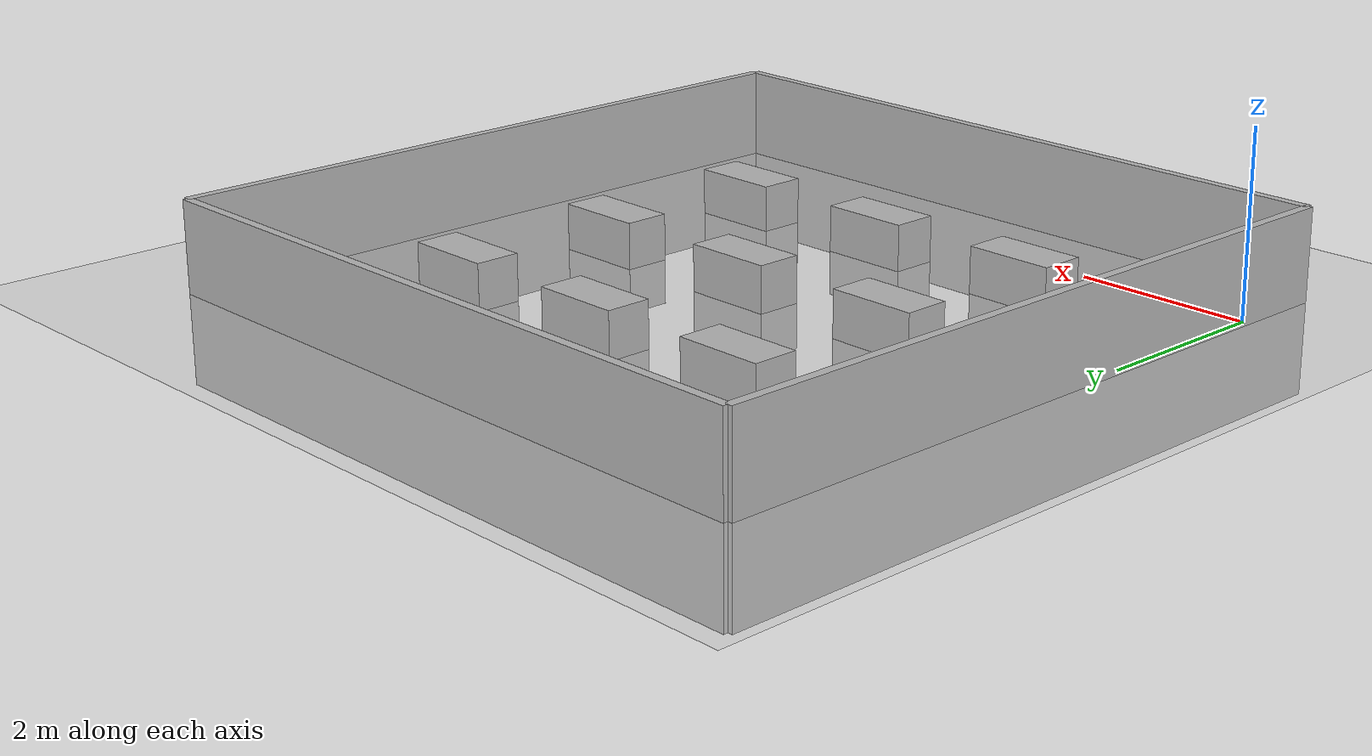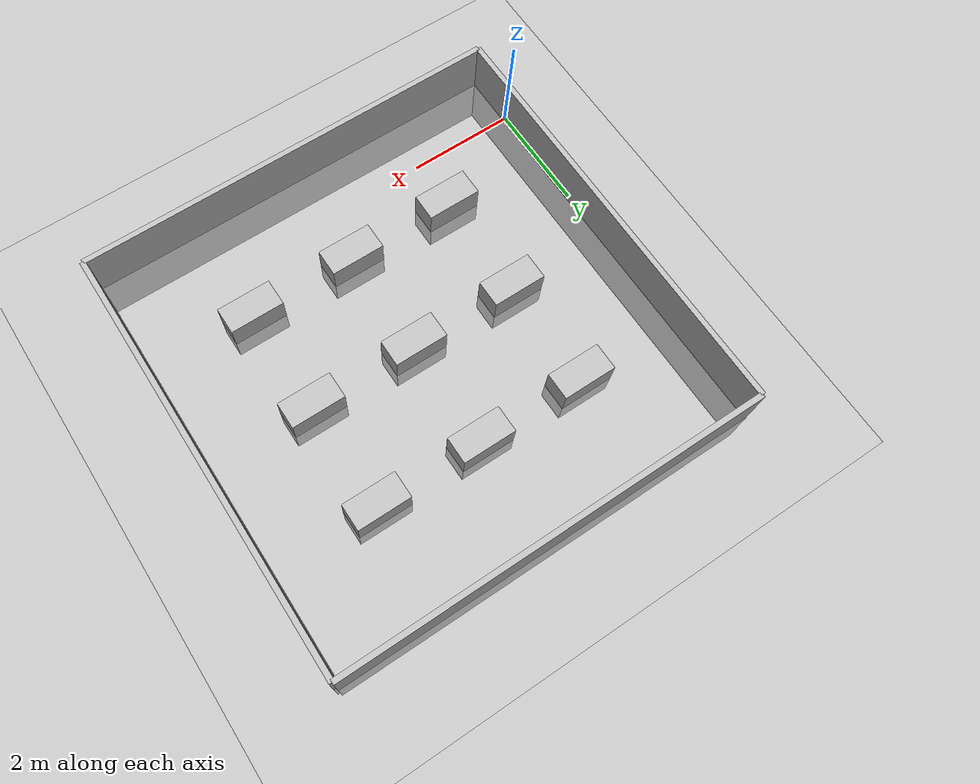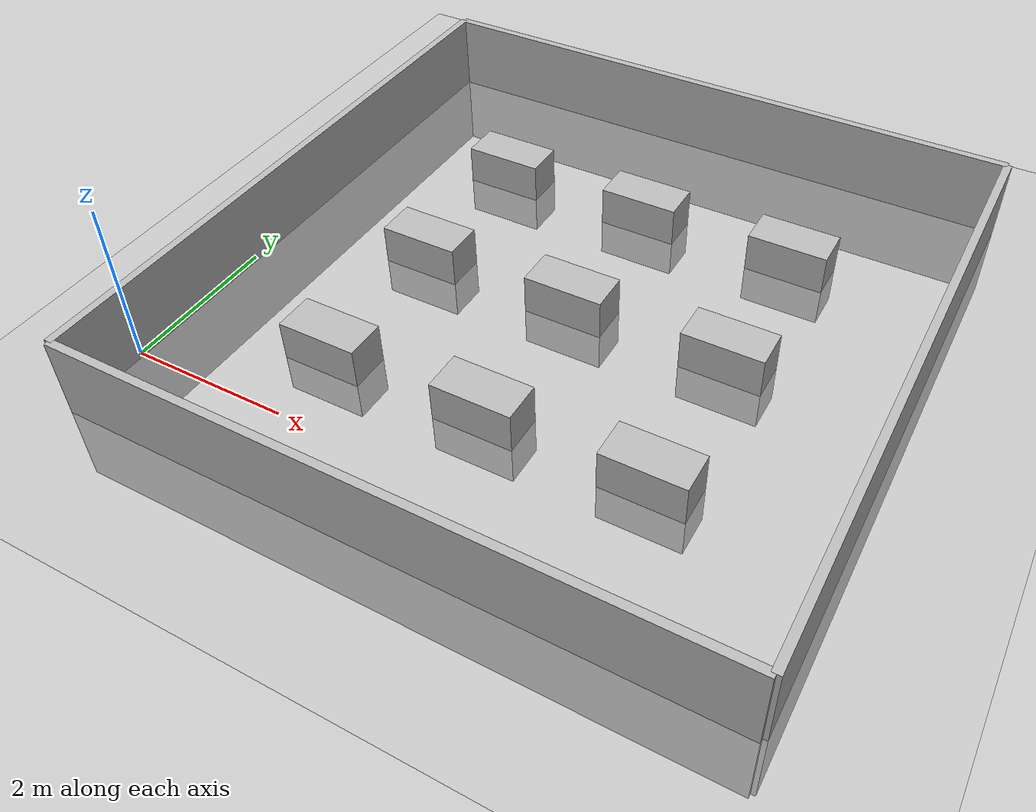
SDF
<?xml version="1.0" ?>
<sdf version="1.7">
	<world name="warehouse">
		 <include><uri>model://ground_plane</uri></include>
		 <include><uri>model://sun</uri></include>
		 <model name="shelf_1">
			<pose>2 1 0 0 0 0</pose>
			<link name="link">
				<visual name="visual">
					<geometry>
						<box><size>1 0.5 1</size></box>
					</geometry>
				</visual>
				<collision name="collision">
					<geometry>
						<box><size>1 0.5 1</size></box>
					</geometry>
				</collision>
			</link>
		</model>
		 <model name="shelf_2">
                        <pose>2 3 0 0 0 0</pose>
                        <link name="link">
                                <visual name="visual">
                                        <geometry>
                                                <box><size>1 0.5 1</size></box>
                                        </geometry>
                                </visual>
                                <collision name="collision">
                                        <geometry>
                                                <box><size>1 0.5 1</size></box>
                                        </geometry>
                                </collision>
                        </link>
		</model>
		 <model name="shelf_3">
                        <pose>2 5 0 0 0 0</pose>
                        <link name="link">
                                <visual name="visual">
                                        <geometry>
                                                <box><size>1 0.5 1</size></box>
                                        </geometry>
                                </visual>
                                <collision name="collision">
                                        <geometry>
                                                <box><size>1 0.5 1</size></box>
                                        </geometry>
                                </collision>
                        </link>
		</model>
		 <model name="shelf_4">
                        <pose>4 1 0 0 0 0</pose>
                        <link name="link">
                                <visual name="visual">
                                        <geometry>
                                                <box><size>1 0.5 1</size></box>
                                        </geometry>
                                </visual>
                                <collision name="collision">
                                        <geometry>
                                                <box><size>1 0.5 1</size></box>
                                        </geometry>
                                </collision>
                        </link>
		</model>
		 <model name="shelf_5">
                        <pose>4 3 0 0 0 0</pose>
                        <link name="link">
                                <visual name="visual">
                                        <geometry>
                                                <box><size>1 0.5 1</size></box>
                                        </geometry>
                                </visual>
                                <collision name="collision">
                                        <geometry>
                                                <box><size>1 0.5 1</size></box>
                                        </geometry>
                                </collision>
                        </link>
		</model>
		 <model name="shelf_6">
                        <pose>4 5 0 0 0 0</pose>
                        <link name="link">
                                <visual name="visual">
                                        <geometry>
                                                <box><size>1 0.5 1</size></box>
                                        </geometry>
                                </visual>
                                <collision name="collision">
                                        <geometry>
                                                <box><size>1 0.5 1</size></box>
                                        </geometry>
                                </collision>
                        </link>
		</model>
		 <model name="shelf_7">
                        <pose>6 1 0 0 0 0</pose>
                        <link name="link">
                                <visual name="visual">
                                        <geometry>
                                                <box><size>1 0.5 1</size></box>
                                        </geometry>
                                </visual>
                                <collision name="collision">
                                        <geometry>
                                                <box><size>1 0.5 1</size></box>
                                        </geometry>
                                </collision>
                        </link>
		</model>
		 <model name="shelf_8">
                        <pose>6 3 0 0 0 0</pose>
                        <link name="link">
                                <visual name="visual">
                                        <geometry>
                                                <box><size>1 0.5 1</size></box>
                                        </geometry>
                                </visual>
                                <collision name="collision">
                                        <geometry>
                                                <box><size>1 0.5 1</size></box>
                                        </geometry>
                                </collision>
                        </link>
		</model>
		 <model name="shelf_9">
                        <pose>6 5 0 0 0 0</pose>
                        <link name="link">
                                <visual name="visual">
                                        <geometry>
                                                <box><size>1 0.5 1</size></box>
                                        </geometry>
                                </visual>
                                <collision name="collision">
                                        <geometry>
                                                <box><size>1 0.5 1</size></box>
                                        </geometry>
                                </collision>
                        </link>
		</model>
                <model name="wall_1">
                        <pose>0 3 0 0 0 0</pose>
                        <link name="link">
                                <visual name="visual">
                                        <geometry>
                                                <box><size>0.1 8 2</size></box>
                                        </geometry>
                                </visual>
                                <collision name="collision">
                                        <geometry>
                                                <box><size>0.1 8 2</size></box>
                                        </geometry>
                                </collision>
                        </link>
		</model>
                <model name="wall_2">
                        <pose>4 7 0 0 0 0</pose>
                        <link name="link">
                                <visual name="visual">
                                        <geometry>
                                                <box><size>8 0.1 2</size></box>
                                        </geometry>
                                </visual>
                                <collision name="collision">
                                        <geometry>
                                                <box><size>8 0.1 2</size></box>
                                        </geometry>
                                </collision>
                        </link>
		</model>
                <model name="wall_3">
                        <pose>8 3 0 0 0 0</pose>
                        <link name="link">
                                <visual name="visual">
                                        <geometry>
                                                <box><size>0.1 8 2</size></box>
                                        </geometry>
                                </visual>
                                <collision name="collision">
                                        <geometry>
                                                <box><size>0.1 8 2</size></box>
                                        </geometry>
                                </collision>
                        </link>
		</model>
                <model name="wall_4">
                        <pose>4 -1 0 0 0 0</pose>
                        <link name="link">
                                <visual name="visual">
                                        <geometry>
                                                <box><size>8 0.1 2</size></box>
                                        </geometry>
                                </visual>
                                <collision name="collision">
                                        <geometry>
                                                <box><size>8 0.1 2</size></box>
                                        </geometry>
                                </collision>
                        </link>
		</model>
		<plugin name="gazebo_ros_factory" filename="libgazebo_ros_factory.so">
			<ros><namespace>/</namespace></ros>
		</plugin>
	</world>
</sdf>
